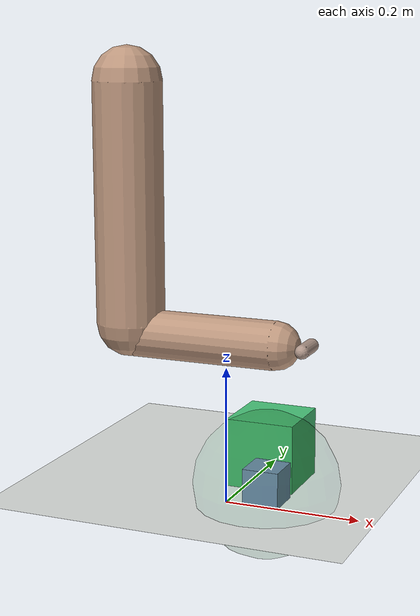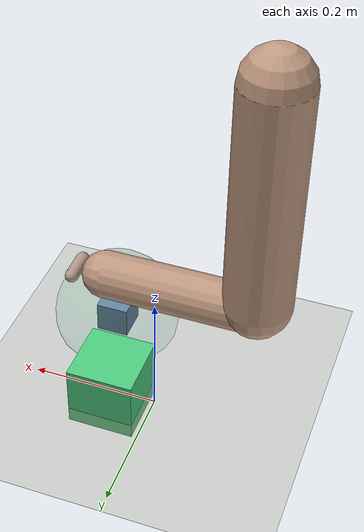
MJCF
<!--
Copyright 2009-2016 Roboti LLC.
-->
<mujoco model="arm_claw (v1.31)">
	<compiler 	inertiafromgeom="true"
				angle="radian"/>

	<size 	nuser_jnt="1"
			nuser_geom="1"/>

	<option	timestep="0.001"
			gravity="0 0 0"
			viscosity="0"
			iterations="20"/>

	<asset>
		<material name="MatGnd" specular=".3" shininess=".3" reflectance="0.3" rgba=".5 .55 .5 1"/>
	</asset>

	<default>
		<joint limited="true" damping="1" stiffness="0" armature=".1" user="0"/>
		<geom solref="0.008 1" solimp="0.95 0.95 0.01" margin="0.001" user="0"/>
		<motor ctrllimited="true" ctrlrange="-1 1"/>
		<position ctrllimited="true"/>

		<default class='0'>
			<geom friction="1 0.005 0.001" rgba=".75 .6 .5 1" contype="1" conaffinity="0"/>
		</default>

		<default class='1'>
			<geom friction="1 0.005 0.001" rgba=".7 .6 .55 1" contype="1" conaffinity="0"/>
		</default>

		<default class='arm'>
			<joint damping="5"/>
		</default>
	</default>

	<worldbody>
		<light directional="true" cutoff="40" exponent="10" diffuse=".4 .4 .4" specular=".7 .7 .7" pos="0 0 1.5" dir="0 0 -1"/>
		<geom name="tableTop" material="MatGnd" type="plane" pos="0.15 0 0.05" size="0.4 0.6 0.5" rgba=".6 .6 .5 1" contype="1" conaffinity="1"/>

		<!--  ================= ARM ================= /-->
		<body name="upperarm" pos="-0.15 0 0.6">
			<geom class="0" type="capsule" fromto="0 0 0 0 0 -0.345" size="0.05"/>
			<joint class='arm' name="s_abduction" type="hinge" pos="0 0 0" limited='false' axis="1 0 0" user="001"/>
			<joint class='arm' name="s_flexion" type="hinge" pos="0 0 0" limited='false' axis="0 -1 0" user="002"/>
			<joint class='arm' name="s_rotation" type="hinge" pos="0 0 0" limited='false' axis="0 0 1" user="003"/>

			<body name="forearm" pos="0 0 -0.36">
				<geom class="0" type="capsule" fromto="0 0 0 0.225 0 0" size="0.035"/>
				<joint class='arm' name="e_flexion" type="hinge" pos="0 0 0" limited='false' axis="0 -1 0" user="004"/>
				<joint class='arm' name="e_pronation" type="hinge" pos="0 0 0" limited='false' axis="-1 0 0" user="005"/>

	<!--  ================= Palm ================= /-->

				<body name="claw" pos="0.27 0 0" quat="0 1 0 0">
					<geom class="1" name="Geomclaw" type="capsule" fromto="0 .02 0 0 -.02 0" size="0.01" />
					<joint name="w_abduction" type="hinge" pos="0 0 0" limited='false' axis="0 0 1" user="006"/>
					<joint name="w_flexion" type="hinge" pos="0 0 0" limited='false' axis="0 -1 0" user="007"/>
					<site name="end_effector" pos="0 0 0" size="0.01"/>
				</body>
			</body>
		</body>

		<!--  ================= OBJECT ================= /-->
		<body name="small_object" pos="0.2 0 0.075">
			<geom type="sphere" name="sphere" pos="-0.1 -0.1 0" size="0.1" rgba="0 0.3 0 0.2" user="1" contype="0" conaffinity="0"/>
			<geom type="box" name="small_box" pos="-0.1 -0.1 0" size="0.025 0.025 0.025" rgba="0.5 0.6 0.8 1" user="1" contype="1" conaffinity="1"/>
			<joint armature="0" axis="1 0 0" damping="0" name="target_x" stiffness="0" limited='false' type="slide"/>
			<joint armature="0" axis="0 1 0" damping="0" name="target_y" stiffness="0" limited='false' type="slide"/>
		</body>
		<body name="large_object" pos="0.1 0 0.075">
			<geom type="box" name="large_box" pos="-0.05 0.05 0" size="0.05 0.05 0.05" rgba="0.3 0.8 0.5 1" user="1" contype="1" conaffinity="1"/>
		</body>

	</worldbody>

	<actuator>

		<!--  ================= Torque actuators ================= /-->
		<motor joint='s_abduction' 	name='As_abduction' gear="100"/>
		<motor joint='s_flexion' 	name='As_flexion' 	gear="100"/>
		<motor joint='s_rotation' 	name='As_rotation' 	gear="100"/>
		<motor joint='e_flexion' 	name='Ae_flexion' 	gear="70"/>
		<motor joint='e_pronation' 	name='Ae_pronation' gear="70"/>
		<motor joint='w_abduction' 	name='Aw_abduction' gear="30"/>
		<motor joint='w_flexion' 	name='Aw_flexion' 	gear="30"/>

		<!--  ================= Position actuators ================= /-->

	</actuator>

</mujoco>
